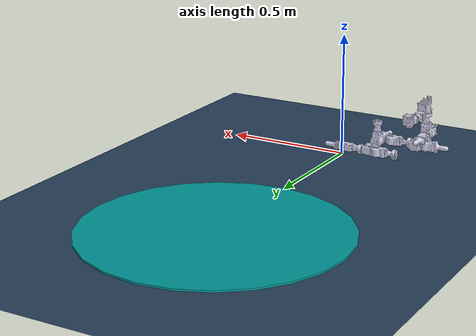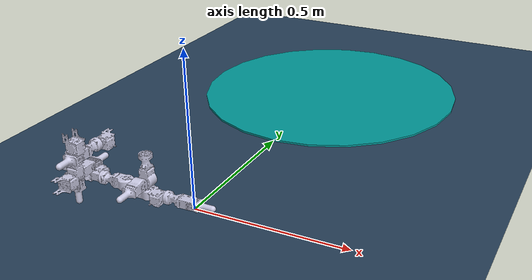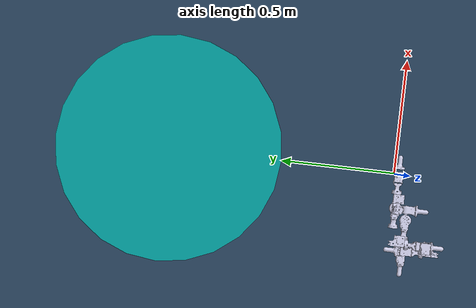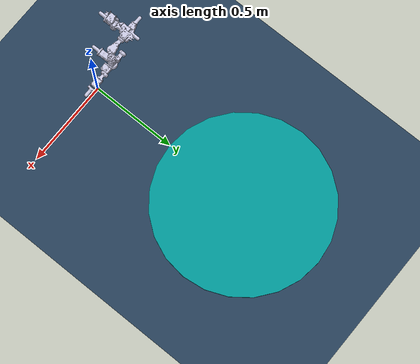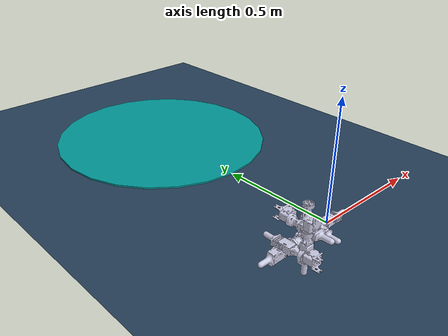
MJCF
<mujoco model="wriggly_branched">
  <option timestep = "0.005" integrator="RK4"/>

  <worldbody>
    <geom name="target" pos="0 1 0" type="cylinder" size=".5 .005 0" rgba="0 0.6 0.6 1"/>
  </worldbody>
  <include file = "assets/materials.xml"/>

  <include file = "scenes/basic_scene.xml"/>
  <!--include file = "scenes/dkitty_scene.xml"-->
  <include file = "assets/wriggly_dependencies_branched.xml"/>
  <compiler meshdir="."/>
  <include file = "assets/wriggly_chain_branched.xml"/>

</mujoco>

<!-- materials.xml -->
<mujoco>
  <material name="0,0,0" specular="1.0" shininess="1.0" rgba="0.000000 0.000000 0.000000 1.000000" />
  <material name="10,10,10_LINK_6" specular="1.0" shininess="0.2" rgba="0.039216 0.039216 0.039216 1.000000" />
  <material name="10,10,10" specular="0.039216" shininess="1.0" rgba="0.039216 0.039216 0.039216 1.000000" />
  <material name="163,163,175" specular="1.0" shininess="0.2" rgba="0.639216 0.639216 0.686275 1.000000" />
  <material name="178,0,0" specular="1.0" shininess="0.2" rgba="0.698039 0.000000 0.000000 1.000000" />
  <material name="190,188,186" specular="1.0" shininess="0.2" rgba="0.745098 0.737255 0.729412 1.000000" />
  <material name="191,191,191" specular="0.0" shininess="0.3" rgba="0.749020 0.749020 0.749020 1.000000" />
  <material name="192,192,192" specular="1.0" shininess="0.2" rgba="0.752941 0.752941 0.752941 1.000000" />
  <material name="216,214,214" specular="1.0" shininess="0.2" rgba="0.847059 0.839216 0.839216 1.000000" />
  <material name="237,255,168" specular="1.0" shininess="0.2" rgba="0.929412 1.000000 0.658824 1.000000" />
  <material name="242,236,238" specular="1.0" shininess="0.2" rgba="0.949020 0.925490 0.933333 1.000000" />
  <material name="244,244,244" specular="0.9568629999999999" shininess="1.0" rgba="0.956863 0.956863 0.956863 1.000000" />
  <material name="25,25,25" specular="1.0" shininess="0.8" rgba="0.100000 0.100000 0.100000 1.000000" />
  <material name="254,254,255_LINK_6" specular="1.0" shininess="0.2" rgba="0.996078 0.996078 1.000000 1.000000" />
  <material name="254,254,255" specular="0.9973853333333333" shininess="1.0" rgba="0.996078 0.996078 1.000000 1.000000" />
  <material name="65,55,50" specular="1.0" shininess="0.2" rgba="0.254902 0.215686 0.196078 1.000000" />
  <material name="65,65,65" specular="0.254902" shininess="1.0" rgba="0.254902 0.254902 0.254902 1.000000"/>
  <material name="69,69,69_1" specular="0.0" shininess="1.0" rgba="0.270588 0.270588 0.270588 1.000000" />
  <material name="69,69,69" specular="1.0" shininess="1.0" rgba="0.270588 0.270588 0.270588 1.000000" />
  <material name="70,70,70_FINGER" specular="0.27451" shininess="1.0" rgba="0.274510 0.274510 0.274510 1.000000" />
  <material name="70,70,70" specular="1.0" shininess="0.2" rgba="0.274510 0.274510 0.274510 1.000000" />
  <material name="79,79,79" specular="1.0" shininess="0.2" rgba="0.309804 0.309804 0.309804 1.000000" />
  <material name="80,80,80" specular="0.0" shininess="0.5" rgba="0.313725 0.313725 0.313725 1.000000" />
  <material name="219,216,216" specular="1.0" shininess="0.2" rgba="0.858824 0.847059 0.847059 1.000000"/>
  <material name="160,160,160" specular="1.0" shininess="0.2" rgba="0.627451 0.627451 0.627451 1.000000"/>
  <material name="246,246,243" specular="1.0" shininess="0.2" rgba="0.964706 0.964706 0.952941 1.000000"/>
  <material name="255,255,255" specular="1.0" shininess="0.2" rgba="1.000000 1.000000 1.000000 1.000000"/>
</mujoco>

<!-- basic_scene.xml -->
<mujoco>

  <asset>
    <!-- Textures -->
    <texture type="skybox" builtin="gradient" rgb1="0.3 0.5 0.7" rgb2="0 0 0" width="512" height="3072"/>
    <texture type="2d" name="groundplane" builtin="checker" mark="edge" rgb1="0.2 0.3 0.4" rgb2="0.1 0.2 0.3" markrgb="0.8 0.8 0.8" width="300" height="300"/>
    <!-- Materials -->
    <material name="groundplane" texture="groundplane" texuniform="true" texrepeat="5 5" reflectance="0.2"/>
  </asset>

  <worldbody>
    <!-- Floor -->
    <geom name="floor" condim="3" friction="0.5 0.005 0.0001" size="0 0 0.05" type="plane" material="groundplane"/>
    <!-- Light -->
    <light name="ceiling" pos="0 0 2" dir="0 0 -1" directional="true"/>
    <!-- Cameras -->
    <camera name="target_from_origin" pos="0 0 1.25" xyaxes="0 -1 0 1 0 0"/>
    <camera name = "free" pos="1.583 -1.302 2.903" xyaxes="0.762 0.648 0.000 -0.527 0.620 0.581"/>

  </worldbody>

</mujoco>

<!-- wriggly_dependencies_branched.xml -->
<mujoco>
  <compiler angle="radian" autolimits="true" />
  <default>
      <position forcelimited="true" forcerange="-3 3"/>
      <geom solref=".01 1" solimp="0.9 0.95 0.001 0.5 6"/>
  </default>
  <asset>
    <mesh name="base_link"        file="../mujoco/meshes/base_link.STL"/>
    <mesh name="green_leg_holder" file="../mujoco/meshes/green_leg_holder.STL"/>
    <mesh name="central_link"     file="../mujoco/meshes/central_link.STL"/>
    <mesh name="red_central"      file="../mujoco/meshes/red_central.STL"/>
    <mesh name="red_leg_holder"   file="../mujoco/meshes/red_leg_holder.STL"/>
    <mesh name="red_leg"          file="../mujoco/meshes/red_leg.STL"/>
  </asset>
  <actuator>
    <position name="ACT0" kp="5" joint="Green_Leg_Final_Joint"   ctrlrange="-1.57 1.57"/>
    <position name="ACT1" kp="5" joint="Green_Leg_Central_Joint" ctrlrange="-3.14 3.14"/>
    <position name="ACT2" kp="5" joint="Red_Leg_Central_Joint"   ctrlrange="-1.57 1.57"/>
    <position name="ACT3" kp="5" joint="Red_Knee"                ctrlrange="-3.14 3.14"/>
    <position name="ACT4" kp="5" joint="Red_Leg_Final_Joint"     ctrlrange="-1.57 1.57"/>
    <position name="ACT5" kp="5" joint="Green_Leg_Final_Joint"   ctrlrange="-1.57 1.57"/>
    <position name="ACT6" kp="5" joint="Green_Leg_Central_Joint" ctrlrange="-3.14 3.14"/>
    <position name="ACT7" kp="5" joint="Red_Leg_Central_Joint"   ctrlrange="-1.57 1.57"/>
    <position name="ACT8" kp="5" joint="Red_Knee"                ctrlrange="-3.14 3.14"/>
    <position name="ACT9" kp="5" joint="Red_Leg_Final_Joint"     ctrlrange="-1.57 1.57"/>
    <position name="ACT10" kp="5" joint="Green_Leg_Final_Joint"   ctrlrange="-1.57 1.57"/>
    <position name="ACT11" kp="5" joint="Green_Leg_Central_Joint" ctrlrange="-3.14 3.14"/>
  </actuator>
  <sensor>
    <jointpos name="ACT0_pos_sensor" joint="Green_Leg_Final_Joint"/>
    <jointpos name="ACT1_pos_sensor" joint="Green_Leg_Central_Joint"/>
    <jointpos name="ACT2_pos_sensor" joint="Red_Leg_Central_Joint"/>
    <jointpos name="ACT3_pos_sensor" joint="Red_Knee"/>
    <jointpos name="ACT4_pos_sensor" joint="Red_Leg_Final_Joint"/>
    <jointpos name="ACT5_pos_sensor" joint="Green_Leg_Final_Joint"/>
    <jointpos name="ACT6_pos_sensor" joint="Green_Leg_Central_Joint"/>
    <jointpos name="ACT7_pos_sensor" joint="Red_Leg_Central_Joint"/>
    <jointpos name="ACT8_pos_sensor" joint="Red_Knee"/>
    <jointpos name="ACT9_pos_sensor" joint="Red_Leg_Final_Joint"/>
    <jointpos name="ACT10_pos_sensor" joint="Green_Leg_Final_Joint"/>
    <jointpos name="ACT11_pos_sensor" joint="Green_Leg_Central_Joint"/>

    <jointvel name="ACT0_velocity_sensor" joint="Green_Leg_Final_Joint"/>
    <jointvel name="ACT1_velocity_sensor" joint="Green_Leg_Central_Joint"/>
    <jointvel name="ACT2_velocity_sensor" joint="Red_Leg_Central_Joint"/>
    <jointvel name="ACT3_velocity_sensor" joint="Red_Knee"/>
    <jointvel name="ACT4_velocity_sensor" joint="Red_Leg_Final_Joint"/>
    <jointvel name="ACT5_velocity_sensor" joint="Green_Leg_Final_Joint"/>
    <jointvel name="ACT6_velocity_sensor" joint="Green_Leg_Central_Joint"/>
    <jointvel name="ACT7_velocity_sensor" joint="Red_Leg_Central_Joint"/>
    <jointvel name="ACT8_velocity_sensor" joint="Red_Knee"/>
    <jointvel name="ACT9_velocity_sensor" joint="Red_Leg_Final_Joint"/>
    <jointvel name="ACT10_velocity_sensor" joint="Green_Leg_Final_Joint"/>
    <jointvel name="ACT11_velocity_sensor" joint="Green_Leg_Central_Joint"/>
  </sensor>
</mujoco>

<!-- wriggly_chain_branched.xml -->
<mujoco>
  <worldbody>
    <!-- Green Leg -->
    <body name="green_leg" gravcomp="0" pos="0 0 0.027">
      <inertial pos="0.0 -0.0 0.0" quat="0.5 -0.5 0.5 -0.5" mass="0.025" diaginertia="5.02495112065811E-06 7.84051273383468E-06 1.03414373246399E-05"/>
      <joint name="free" pos="0 0 0" type="free"/>
      <geom name = "green_leg" pos = "-0.3235 0.23065 0" type="mesh" rgba="0.8 0.8 0.9 1" mesh="base_link"/>

      <!-- Green Leg Holder -->
      <body name="Green_Leg_Holder" pos="0.0 -0.0 0" quat="0.5 -0.5 0.5 -0.5" gravcomp="0">
        <inertial pos="0.0172732 -1.71313e-05 -0.0312874" quat="0.707094 0.00279184 0.00136492 0.707112" mass="0.101" diaginertia="1.71483e-05 1.52784e-05 1.18772e-05"/>
        <joint name="Green_Leg_Final_Joint" pos="0 0 0" axis="1 0 0" damping=".5" armature="0.001"/>
        <geom name = "Green_Leg_Holder" pos = "0. 0 0" type="mesh" rgba="0.8 0.8 0.9 1" mesh="green_leg_holder"/>

        <!-- Central Link -->
        <body name="Central_Link" pos="0.017 0 -0.1045" quat="0.707107 0 0 0.707107" gravcomp="0">
          <inertial pos="9.37688e-10 -0.0119557 -0.00143737" quat="0.707745 0.706468 -1.73858e-06 1.74172e-06" mass="0.091" diaginertia="1.40798e-05 1.31645e-05 8.83029e-06"/>
          <joint name="Green_Leg_Central_Joint" pos="0 0 0" axis="0 0 1" damping=".5" armature="0.001"/>
          <geom type="mesh" rgba="0.8 0.8 0.9 1" mesh="central_link"/>

          <!-- Red Leg Central Link -->
          <body name="Red_Leg_Central_Link" pos="0 0 -0.04515" quat="0.5 0.5 0.5 0.5" gravcomp="0">
            <inertial pos="-0.000634684 -0.0270609 -0.000240499" quat="0.707212 0.704458 -0.0410108 -0.0436829" mass="0.113" diaginertia="2.05457e-05 1.98685e-05 1.50592e-05"/>
            <joint name="Red_Leg_Central_Joint" pos="0 0 0" axis="0 0 1" damping=".5" armature="0.001"/>
            <geom type="mesh" rgba="0.8 0.8 0.9 1" mesh="red_central"/>

            <!-- Red Leg Central Link -->
            <body name="Red_Leg_Central_Link1" pos="0 0 -0.04515" quat="0.5 0.5 0.5 0.5" gravcomp="0">
              <inertial pos="-0.000634684 -0.0270609 -0.000240499" quat="0.707212 0.704458 -0.0410108 -0.0436829" mass="0.113" diaginertia="2.05457e-05 1.98685e-05 1.50592e-05"/>
              <joint name="Red_Leg_Central_Joint1" pos="0 0 0" axis="0 0 1" damping=".5" armature="0.001"/>
              <geom type="mesh" rgba="0.8 0.8 0.9 1" mesh="red_central"/>

              <!-- Red Leg2 -->
              <body name="Red_Leg2" pos="0 0 -0.045" quat="0.5 -0.5 0.5 -0.5" gravcomp="0">
                <inertial pos="0.00101128 0.025027 -0.000247357" quat="0.705699 0.707278 -0.0298534 -0.0292677" mass="0.112" diaginertia="2.31293e-05 2.08201e-05 1.20376e-05"/>
                <joint name="Red_Leg_Final_Joint2" pos="0 0 0" axis="0 0 1" damping=".5" armature="0.001"/>
                <geom type="mesh" rgba="0.8 0.8 0.9 1" mesh="red_leg"/>

                <!-- Red Leg Central Link 3-->
                <body name="Red_Leg_Central_Link3" pos="0 0 -0.04515" quat="0.5 0.5 0.5 0.5" gravcomp="0">
                  <inertial pos="-0.000634684 -0.0270609 -0.000240499" quat="0.707212 0.704458 -0.0410108 -0.0436829" mass="0.113" diaginertia="2.05457e-05 1.98685e-05 1.50592e-05"/>
                  <joint name="Red_Leg_Central_Joint3" pos="0 0 0" axis="0 0 1" damping=".5" armature="0.001"/>
                  <geom type="mesh" rgba="0.8 0.8 0.9 1" mesh="red_central"/>

                  <!-- Red Leg Holder -->
                  <body name="Red_Leg_Holder" pos="0 -0.10485 0" quat="-0.5 0.5 0.5 0.5" gravcomp="0">
                    <inertial pos="9.37688e-10 -0.0119557 -0.00143737" quat="0.707745 0.706468 -1.73858e-06 1.74172e-06" mass="0.091" diaginertia="1.40798e-05 1.31645e-05 8.83029e-06"/>
                    <joint name="Red_Knee" pos="0 0 0" axis="0 0 1" damping=".5" armature="0.001"/>
                    <geom type="mesh" rgba="0.8 0.8 0.9 1" mesh="red_leg_holder"/>

                    <!-- Red Leg -->
                    <body name="Red_Leg" pos="0 0 -0.045" quat="0.5 -0.5 0.5 -0.5" gravcomp="0">
                      <inertial pos="0.00101128 0.025027 -0.000247357" quat="0.705699 0.707278 -0.0298534 -0.0292677" mass="0.112" diaginertia="2.31293e-05 2.08201e-05 1.20376e-05"/>
                      <joint name="Red_Leg_Final_Joint" pos="0 0 0" axis="0 0 1" damping=".5" armature="0.001"/>
                      <geom type="mesh" rgba="0.8 0.8 0.9 1" mesh="red_leg"/>

                      <!-- Green Leg -->
                      <body name="green_leg2" gravcomp="0" pos="0 0 0.027">
                        <inertial pos="0.0 -0.0 0.0" quat="0.5 -0.5 0.5 -0.5" mass="0.025" diaginertia="5.02495112065811E-06 7.84051273383468E-06 1.03414373246399E-05"/>
                        <joint name="free2" pos="0 0 0"/>
                        <geom name = "green_leg2" pos = "-0.3235 0.23065 0" type="mesh" rgba="0.8 0.8 0.9 1" mesh="base_link"/>

                        <!-- Green Leg Holder -->
                        <body name="Green_Leg_Holder2" pos="0.0 -0.0 0" quat="0.5 -0.5 0.5 -0.5" gravcomp="0">
                          <inertial pos="0.0172732 -1.71313e-05 -0.0312874" quat="0.707094 0.00279184 0.00136492 0.707112" mass="0.101" diaginertia="1.71483e-05 1.52784e-05 1.18772e-05"/>
                          <joint name="Green_Leg_Final_Joint2" pos="0 0 0" axis="1 0 0" damping=".5" armature="0.001"/>
                          <geom name = "Green_Leg_Holder2" pos = "0. 0 0" type="mesh" rgba="0.8 0.8 0.9 1" mesh="green_leg_holder"/>

                          <!-- Central Link -->
                          <body name="Central_Link2" pos="0.017 0 -0.1045" quat="0.707107 0 0 0.707107" gravcomp="0">
                            <inertial pos="9.37688e-10 -0.0119557 -0.00143737" quat="0.707745 0.706468 -1.73858e-06 1.74172e-06" mass="0.091" diaginertia="1.40798e-05 1.31645e-05 8.83029e-06"/>
                            <joint name="Green_Leg_Central_Joint2" pos="0 0 0" axis="0 0 1" damping=".5" armature="0.001"/>
                            <geom type="mesh" rgba="0.8 0.8 0.9 1" mesh="central_link"/>

                            <!-- Green Leg -->
                            <body name="green_leg3" gravcomp="0" pos="0 0 0.027">
                              <inertial pos="0.0 -0.0 0.0" quat="0.5 -0.5 0.5 -0.5" mass="0.025" diaginertia="5.02495112065811E-06 7.84051273383468E-06 1.03414373246399E-05"/>
                              <joint name="free3" pos="0 0 0"/>
                              <geom name = "green_leg3" pos = "-0.3235 0.23065 0" type="mesh" rgba="0.8 0.8 0.9 1" mesh="base_link"/>

                              <!-- Green Leg Holder -->
                              <body name="Green_Leg_Holder3" pos="0.0 -0.0 0" quat="0.5 -0.5 0.5 -0.5" gravcomp="0">
                                <inertial pos="0.0172732 -1.71313e-05 -0.0312874" quat="0.707094 0.00279184 0.00136492 0.707112" mass="0.101" diaginertia="1.71483e-05 1.52784e-05 1.18772e-05"/>
                                <joint name="Green_Leg_Final_Joint3" pos="0 0 0" axis="1 0 0" damping=".5" armature="0.001"/>
                                <geom name = "Green_Leg_Holder3" pos = "0. 0 0" type="mesh" rgba="0.8 0.8 0.9 1" mesh="green_leg_holder"/>

                                <!-- Central Link -->
                                <body name="Central_Link3" pos="0.017 0 -0.1045" quat="0.707107 0 0 0.707107" gravcomp="0">
                                  <inertial pos="9.37688e-10 -0.0119557 -0.00143737" quat="0.707745 0.706468 -1.73858e-06 1.74172e-06" mass="0.091" diaginertia="1.40798e-05 1.31645e-05 8.83029e-06"/>
                                  <joint name="Green_Leg_Central_Joint3" pos="0 0 0" axis="0 0 1" damping=".5" armature="0.001"/>
                                  <geom type="mesh" rgba="0.8 0.8 0.9 1" mesh="central_link"/>

                                  <!-- Green Leg -->
                                  <body name="green_leg4" gravcomp="0" pos="0 0 0.027">
                                    <inertial pos="0.0 -0.0 0.0" quat="0.5 -0.5 0.5 -0.5" mass="0.025" diaginertia="5.02495112065811E-06 7.84051273383468E-06 1.03414373246399E-05"/>
                                    <joint name="free4" pos="0 0 0"/>
                                    <geom name = "green_leg4" pos = "-0.3235 0.23065 0" type="mesh" rgba="0.8 0.8 0.9 1" mesh="base_link"/>

                                    <!-- Green Leg Holder -->
                                    <body name="Green_Leg_Holder4" pos="0.0 -0.0 0" quat="0.5 -0.5 0.5 -0.5" gravcomp="0">
                                      <inertial pos="0.0172732 -1.71313e-05 -0.0312874" quat="0.707094 0.00279184 0.00136492 0.707112" mass="0.101" diaginertia="1.71483e-05 1.52784e-05 1.18772e-05"/>
                                      <joint name="Green_Leg_Final_Joint4" pos="0 0 0" axis="1 0 0" damping=".5" armature="0.001"/>
                                      <geom name = "Green_Leg_Holder4" pos = "0. 0 0" type="mesh" rgba="0.8 0.8 0.9 1" mesh="green_leg_holder"/>

                                      <!-- Central Link -->
                                      <body name="Central_Link4" pos="0.017 0 -0.1045" quat="0.707107 0 0 0.707107" gravcomp="0">
                                        <inertial pos="9.37688e-10 -0.0119557 -0.00143737" quat="0.707745 0.706468 -1.73858e-06 1.74172e-06" mass="0.091" diaginertia="1.40798e-05 1.31645e-05 8.83029e-06"/>
                                        <joint name="Green_Leg_Central_Joint4" pos="0 0 0" axis="0 0 1" damping=".5" armature="0.001"/>
                                        <geom type="mesh" rgba="0.8 0.8 0.9 1" mesh="central_link"/>
                                      </body>
                                    </body>
                                  </body>
                                </body>
                              </body>
                            </body>
                          </body>
                        </body>
                      </body>
                    </body>
                  </body>
                </body>
              </body>
            </body>
          </body>
        </body>
      </body>
    </body>
  </worldbody>
</mujoco>
